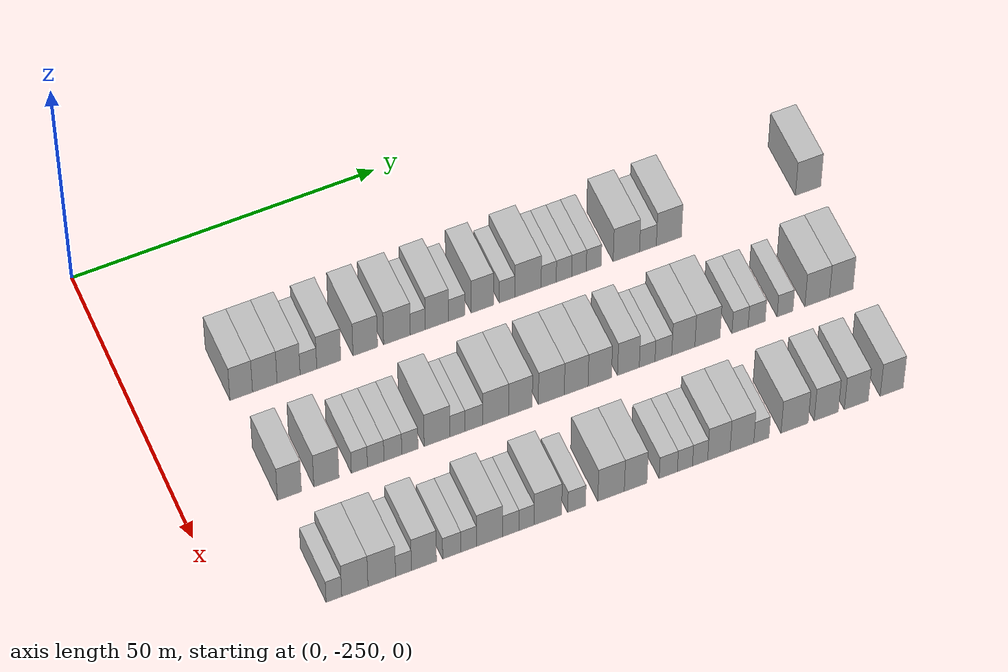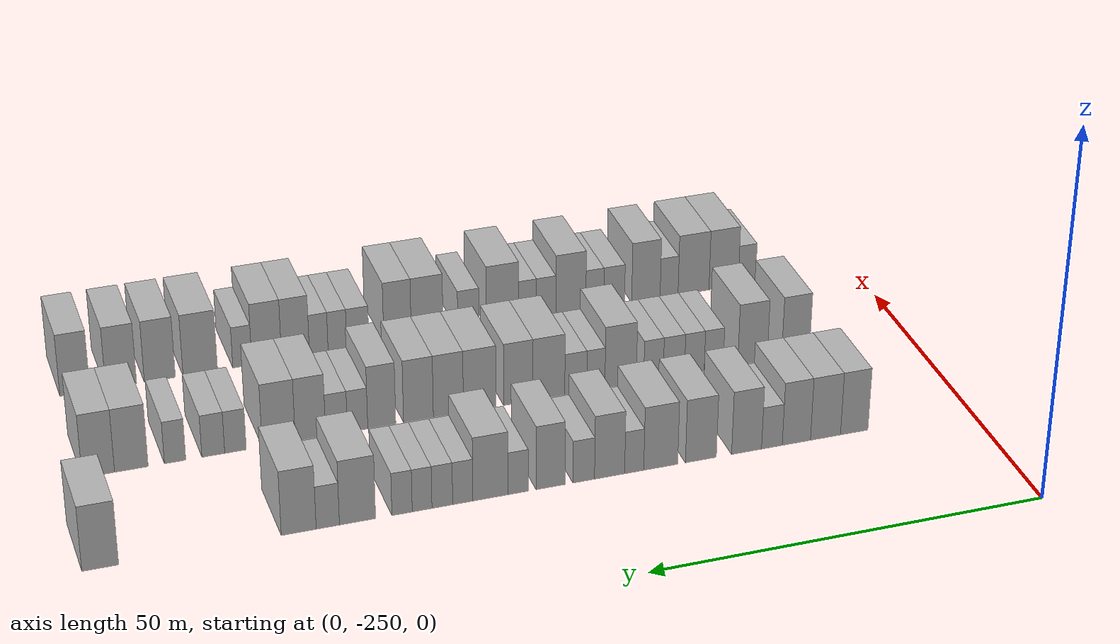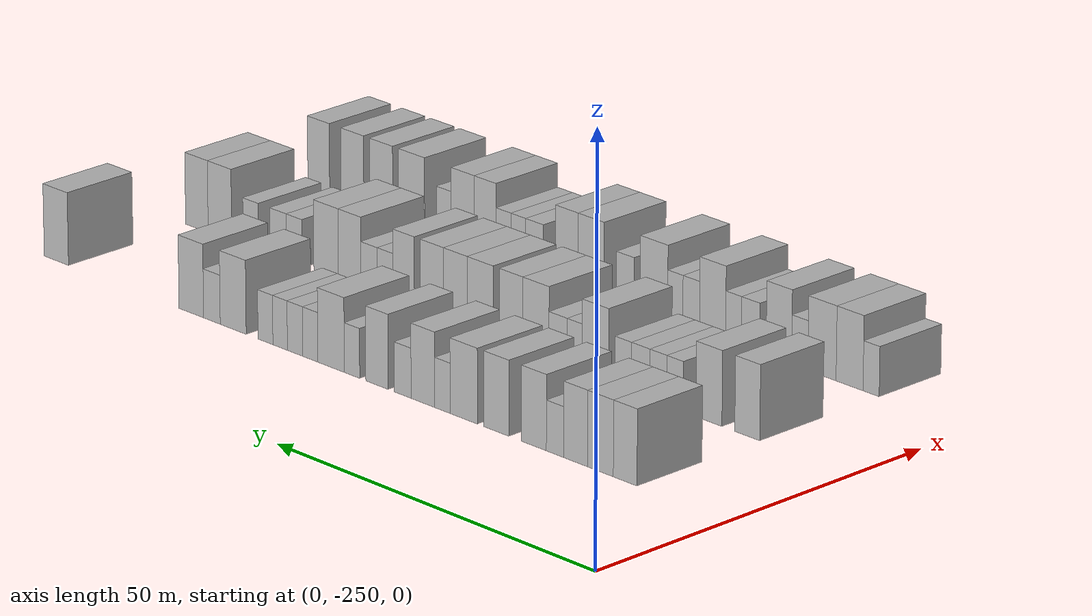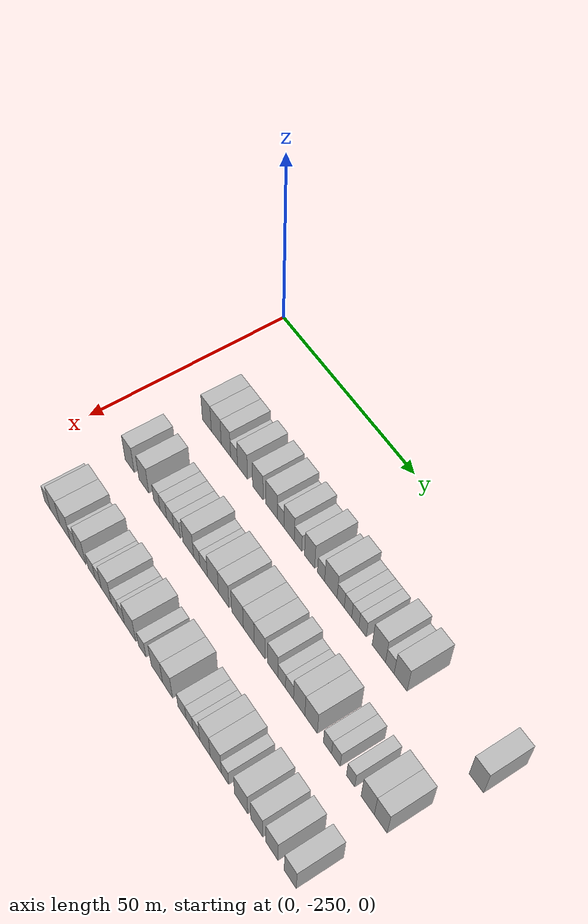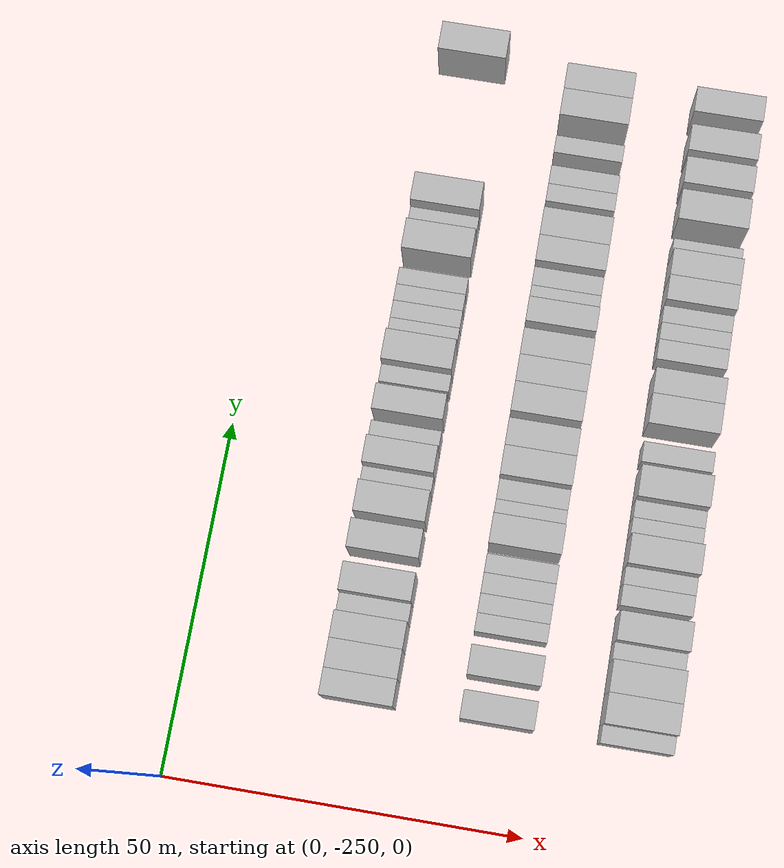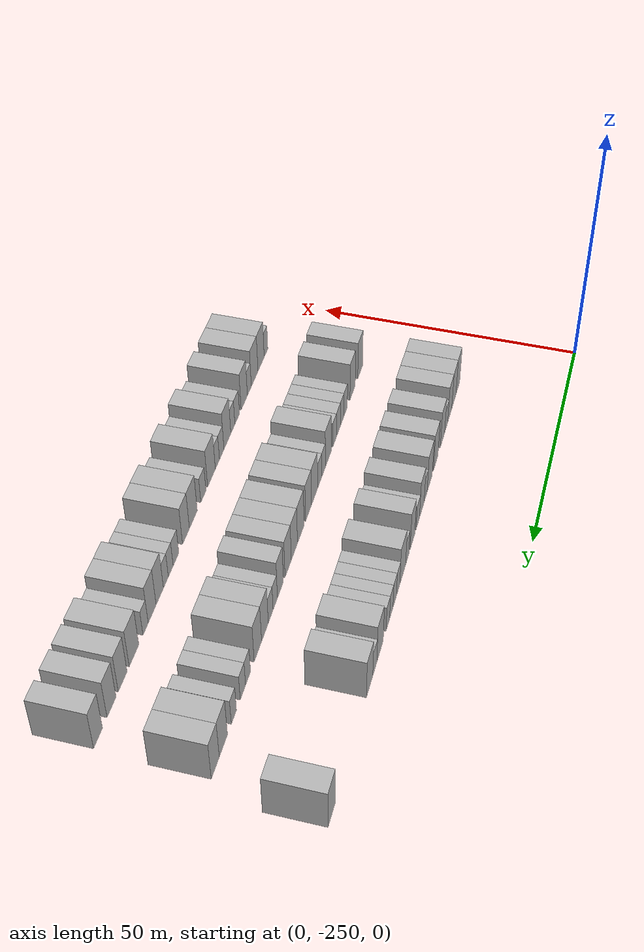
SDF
<sdf version="1.6">
 <world name="default">
  <model name="building_1">
   <static>1</static>
   <pose>25.0000 -234.1651 0 0.000000 0.000000 0.000000</pose>
   <link name="link">
    <pose>0 0 4.50 0 0 0</pose>
    <collision name="collision"><geometry><box><size>10.0000 3.6698 9.0000</size></box></geometry></collision>
    <visual name="visual">
     <cast_shadows>0</cast_shadows>
     <geometry><box><size>10.0000 3.6698 9.0000</size></box></geometry>
     <material>
      <script>
       <uri>model://HANNAS_wall/materials/scripts</uri>
       <uri>model://HANNAS_wall/materials/textures</uri>
       <name>vrc/HANNAS_wall</name>
      </script>
     </material>
    </visual>
   </link>
  </model>
  <model name="building_2">
   <static>1</static>
   <pose>25.0000 -230.3280 0 0.000000 0.000000 0.000000</pose>
   <link name="link">
    <pose>0 0 4.50 0 0 0</pose>
    <collision name="collision"><geometry><box><size>10.0000 4.0046 9.0000</size></box></geometry></collision>
    <visual name="visual">
     <cast_shadows>0</cast_shadows>
     <geometry><box><size>10.0000 4.0046 9.0000</size></box></geometry>
     <material>
      <script>
       <uri>model://HANNAS_wall/materials/scripts</uri>
       <uri>model://HANNAS_wall/materials/textures</uri>
       <name>vrc/HANNAS_wall</name>
      </script>
     </material>
    </visual>
   </link>
  </model>
  <model name="building_3">
   <static>1</static>
   <pose>25.0000 -226.4558 0 0.000000 0.000000 0.000000</pose>
   <link name="link">
    <pose>0 0 4.50 0 0 0</pose>
    <collision name="collision"><geometry><box><size>10.0000 3.7398 9.0000</size></box></geometry></collision>
    <visual name="visual">
     <cast_shadows>0</cast_shadows>
     <geometry><box><size>10.0000 3.7398 9.0000</size></box></geometry>
     <material>
      <script>
       <uri>model://HANNAS_wall/materials/scripts</uri>
       <uri>model://HANNAS_wall/materials/textures</uri>
       <name>vrc/HANNAS_wall</name>
      </script>
     </material>
    </visual>
   </link>
  </model>
  <model name="building_4">
   <static>1</static>
   <pose>25.0000 -223.2216 0 0.000000 0.000000 0.000000</pose>
   <link name="link">
    <pose>0 0 3.00 0 0 0</pose>
    <collision name="collision"><geometry><box><size>10.0000 2.7286 6.0000</size></box></geometry></collision>
    <visual name="visual">
     <cast_shadows>0</cast_shadows>
     <geometry><box><size>10.0000 2.7286 6.0000</size></box></geometry>
     <material>
      <script>
       <uri>model://HANNAS_wall/materials/scripts</uri>
       <uri>model://HANNAS_wall/materials/textures</uri>
       <name>vrc/HANNAS_wall</name>
      </script>
     </material>
    </visual>
   </link>
  </model>
  <model name="building_5">
   <static>1</static>
   <pose>25.0000 -219.8917 0 0.000000 0.000000 0.000000</pose>
   <link name="link">
    <pose>0 0 4.50 0 0 0</pose>
    <collision name="collision"><geometry><box><size>10.0000 3.9312 9.0000</size></box></geometry></collision>
    <visual name="visual">
     <cast_shadows>0</cast_shadows>
     <geometry><box><size>10.0000 3.9312 9.0000</size></box></geometry>
     <material>
      <script>
       <uri>model://HANNAS_wall/materials/scripts</uri>
       <uri>model://HANNAS_wall/materials/textures</uri>
       <name>vrc/HANNAS_wall</name>
      </script>
     </material>
    </visual>
   </link>
  </model>
  <model name="building_6">
   <static>1</static>
   <pose>25.0000 -213.9135 0 0.000000 0.000000 0.000000</pose>
   <link name="link">
    <pose>0 0 4.50 0 0 0</pose>
    <collision name="collision"><geometry><box><size>10.0000 4.0252 9.0000</size></box></geometry></collision>
    <visual name="visual">
     <cast_shadows>0</cast_shadows>
     <geometry><box><size>10.0000 4.0252 9.0000</size></box></geometry>
     <material>
      <script>
       <uri>model://HANNAS_wall/materials/scripts</uri>
       <uri>model://HANNAS_wall/materials/textures</uri>
       <name>vrc/HANNAS_wall</name>
      </script>
     </material>
    </visual>
   </link>
  </model>
  <model name="building_7">
   <static>1</static>
   <pose>25.0000 -208.7086 0 0.000000 0.000000 0.000000</pose>
   <link name="link">
    <pose>0 0 4.50 0 0 0</pose>
    <collision name="collision"><geometry><box><size>10.0000 4.3846 9.0000</size></box></geometry></collision>
    <visual name="visual">
     <cast_shadows>0</cast_shadows>
     <geometry><box><size>10.0000 4.3846 9.0000</size></box></geometry>
     <material>
      <script>
       <uri>model://HANNAS_wall/materials/scripts</uri>
       <uri>model://HANNAS_wall/materials/textures</uri>
       <name>vrc/HANNAS_wall</name>
      </script>
     </material>
    </visual>
   </link>
  </model>
  <model name="building_8">
   <static>1</static>
   <pose>25.0000 -205.2882 0 0.000000 0.000000 0.000000</pose>
   <link name="link">
    <pose>0 0 3.00 0 0 0</pose>
    <collision name="collision"><geometry><box><size>10.0000 2.4560 6.0000</size></box></geometry></collision>
    <visual name="visual">
     <cast_shadows>0</cast_shadows>
     <geometry><box><size>10.0000 2.4560 6.0000</size></box></geometry>
     <material>
      <script>
       <uri>model://HANNAS_wall/materials/scripts</uri>
       <uri>model://HANNAS_wall/materials/textures</uri>
       <name>vrc/HANNAS_wall</name>
      </script>
     </material>
    </visual>
   </link>
  </model>
  <model name="building_9">
   <static>1</static>
   <pose>25.0000 -202.1338 0 0.000000 0.000000 0.000000</pose>
   <link name="link">
    <pose>0 0 4.50 0 0 0</pose>
    <collision name="collision"><geometry><box><size>10.0000 3.8529 9.0000</size></box></geometry></collision>
    <visual name="visual">
     <cast_shadows>0</cast_shadows>
     <geometry><box><size>10.0000 3.8529 9.0000</size></box></geometry>
     <material>
      <script>
       <uri>model://HANNAS_wall/materials/scripts</uri>
       <uri>model://HANNAS_wall/materials/textures</uri>
       <name>vrc/HANNAS_wall</name>
      </script>
     </material>
    </visual>
   </link>
  </model>
  <model name="building_10">
   <static>1</static>
   <pose>25.0000 -198.8336 0 0.000000 0.000000 0.000000</pose>
   <link name="link">
    <pose>0 0 3.00 0 0 0</pose>
    <collision name="collision"><geometry><box><size>10.0000 2.7475 6.0000</size></box></geometry></collision>
    <visual name="visual">
     <cast_shadows>0</cast_shadows>
     <geometry><box><size>10.0000 2.7475 6.0000</size></box></geometry>
     <material>
      <script>
       <uri>model://HANNAS_wall/materials/scripts</uri>
       <uri>model://HANNAS_wall/materials/textures</uri>
       <name>vrc/HANNAS_wall</name>
      </script>
     </material>
    </visual>
   </link>
  </model>
  <model name="building_11">
   <static>1</static>
   <pose>25.0000 -194.6289 0 0.000000 0.000000 0.000000</pose>
   <link name="link">
    <pose>0 0 4.50 0 0 0</pose>
    <collision name="collision"><geometry><box><size>10.0000 3.6620 9.0000</size></box></geometry></collision>
    <visual name="visual">
     <cast_shadows>0</cast_shadows>
     <geometry><box><size>10.0000 3.6620 9.0000</size></box></geometry>
     <material>
      <script>
       <uri>model://HANNAS_wall/materials/scripts</uri>
       <uri>model://HANNAS_wall/materials/textures</uri>
       <name>vrc/HANNAS_wall</name>
      </script>
     </material>
    </visual>
   </link>
  </model>
  <model name="building_12">
   <static>1</static>
   <pose>25.0000 -190.5297 0 0.000000 0.000000 0.000000</pose>
   <link name="link">
    <pose>0 0 3.00 0 0 0</pose>
    <collision name="collision"><geometry><box><size>10.0000 2.5362 6.0000</size></box></geometry></collision>
    <visual name="visual">
     <cast_shadows>0</cast_shadows>
     <geometry><box><size>10.0000 2.5362 6.0000</size></box></geometry>
     <material>
      <script>
       <uri>model://HANNAS_wall/materials/scripts</uri>
       <uri>model://HANNAS_wall/materials/textures</uri>
       <name>vrc/HANNAS_wall</name>
      </script>
     </material>
    </visual>
   </link>
  </model>
  <model name="building_13">
   <static>1</static>
   <pose>25.0000 -187.0638 0 0.000000 0.000000 0.000000</pose>
   <link name="link">
    <pose>0 0 4.50 0 0 0</pose>
    <collision name="collision"><geometry><box><size>10.0000 4.3957 9.0000</size></box></geometry></collision>
    <visual name="visual">
     <cast_shadows>0</cast_shadows>
     <geometry><box><size>10.0000 4.3957 9.0000</size></box></geometry>
     <material>
      <script>
       <uri>model://HANNAS_wall/materials/scripts</uri>
       <uri>model://HANNAS_wall/materials/textures</uri>
       <name>vrc/HANNAS_wall</name>
      </script>
     </material>
    </visual>
   </link>
  </model>
  <model name="building_14">
   <static>1</static>
   <pose>25.0000 -183.6093 0 0.000000 0.000000 0.000000</pose>
   <link name="link">
    <pose>0 0 3.00 0 0 0</pose>
    <collision name="collision"><geometry><box><size>10.0000 2.5132 6.0000</size></box></geometry></collision>
    <visual name="visual">
     <cast_shadows>0</cast_shadows>
     <geometry><box><size>10.0000 2.5132 6.0000</size></box></geometry>
     <material>
      <script>
       <uri>model://HANNAS_wall/materials/scripts</uri>
       <uri>model://HANNAS_wall/materials/textures</uri>
       <name>vrc/HANNAS_wall</name>
      </script>
     </material>
    </visual>
   </link>
  </model>
  <model name="building_15">
   <static>1</static>
   <pose>25.0000 -181.0666 0 0.000000 0.000000 0.000000</pose>
   <link name="link">
    <pose>0 0 3.00 0 0 0</pose>
    <collision name="collision"><geometry><box><size>10.0000 2.5722 6.0000</size></box></geometry></collision>
    <visual name="visual">
     <cast_shadows>0</cast_shadows>
     <geometry><box><size>10.0000 2.5722 6.0000</size></box></geometry>
     <material>
      <script>
       <uri>model://HANNAS_wall/materials/scripts</uri>
       <uri>model://HANNAS_wall/materials/textures</uri>
       <name>vrc/HANNAS_wall</name>
      </script>
     </material>
    </visual>
   </link>
  </model>
  <model name="building_16">
   <static>1</static>
   <pose>25.0000 -178.5636 0 0.000000 0.000000 0.000000</pose>
   <link name="link">
    <pose>0 0 3.00 0 0 0</pose>
    <collision name="collision"><geometry><box><size>10.0000 2.4338 6.0000</size></box></geometry></collision>
    <visual name="visual">
     <cast_shadows>0</cast_shadows>
     <geometry><box><size>10.0000 2.4338 6.0000</size></box></geometry>
     <material>
      <script>
       <uri>model://HANNAS_wall/materials/scripts</uri>
       <uri>model://HANNAS_wall/materials/textures</uri>
       <name>vrc/HANNAS_wall</name>
      </script>
     </material>
    </visual>
   </link>
  </model>
  <model name="building_17">
   <static>1</static>
   <pose>25.0000 -176.0946 0 0.000000 0.000000 0.000000</pose>
   <link name="link">
    <pose>0 0 3.00 0 0 0</pose>
    <collision name="collision"><geometry><box><size>10.0000 2.5043 6.0000</size></box></geometry></collision>
    <visual name="visual">
     <cast_shadows>0</cast_shadows>
     <geometry><box><size>10.0000 2.5043 6.0000</size></box></geometry>
     <material>
      <script>
       <uri>model://HANNAS_wall/materials/scripts</uri>
       <uri>model://HANNAS_wall/materials/textures</uri>
       <name>vrc/HANNAS_wall</name>
      </script>
     </material>
    </visual>
   </link>
  </model>
  <model name="building_18">
   <static>1</static>
   <pose>25.0000 -170.6351 0 0.000000 0.000000 0.000000</pose>
   <link name="link">
    <pose>0 0 4.50 0 0 0</pose>
    <collision name="collision"><geometry><box><size>10.0000 4.4146 9.0000</size></box></geometry></collision>
    <visual name="visual">
     <cast_shadows>0</cast_shadows>
     <geometry><box><size>10.0000 4.4146 9.0000</size></box></geometry>
     <material>
      <script>
       <uri>model://HANNAS_wall/materials/scripts</uri>
       <uri>model://HANNAS_wall/materials/textures</uri>
       <name>vrc/HANNAS_wall</name>
      </script>
     </material>
    </visual>
   </link>
  </model>
  <model name="building_19">
   <static>1</static>
   <pose>25.0000 -167.0160 0 0.000000 0.000000 0.000000</pose>
   <link name="link">
    <pose>0 0 3.00 0 0 0</pose>
    <collision name="collision"><geometry><box><size>10.0000 2.8236 6.0000</size></box></geometry></collision>
    <visual name="visual">
     <cast_shadows>0</cast_shadows>
     <geometry><box><size>10.0000 2.8236 6.0000</size></box></geometry>
     <material>
      <script>
       <uri>model://HANNAS_wall/materials/scripts</uri>
       <uri>model://HANNAS_wall/materials/textures</uri>
       <name>vrc/HANNAS_wall</name>
      </script>
     </material>
    </visual>
   </link>
  </model>
  <model name="building_20">
   <static>1</static>
   <pose>25.0000 -163.4946 0 0.000000 0.000000 0.000000</pose>
   <link name="link">
    <pose>0 0 4.50 0 0 0</pose>
    <collision name="collision"><geometry><box><size>10.0000 4.2192 9.0000</size></box></geometry></collision>
    <visual name="visual">
     <cast_shadows>0</cast_shadows>
     <geometry><box><size>10.0000 4.2192 9.0000</size></box></geometry>
     <material>
      <script>
       <uri>model://HANNAS_wall/materials/scripts</uri>
       <uri>model://HANNAS_wall/materials/textures</uri>
       <name>vrc/HANNAS_wall</name>
      </script>
     </material>
    </visual>
   </link>
  </model>
  <model name="building_21">
   <static>1</static>
   <pose>25.0000 -139.9461 0 0.000000 0.000000 0.000000</pose>
   <link name="link">
    <pose>0 0 4.50 0 0 0</pose>
    <collision name="collision"><geometry><box><size>10.0000 4.2926 9.0000</size></box></geometry></collision>
    <visual name="visual">
     <cast_shadows>0</cast_shadows>
     <geometry><box><size>10.0000 4.2926 9.0000</size></box></geometry>
     <material>
      <script>
       <uri>model://HANNAS_wall/materials/scripts</uri>
       <uri>model://HANNAS_wall/materials/textures</uri>
       <name>vrc/HANNAS_wall</name>
      </script>
     </material>
    </visual>
   </link>
  </model>
  <model name="building_119">
   <static>1</static>
   <pose>44.0000 -234.0706 0 0.000000 0.000000 0.000000</pose>
   <link name="link">
    <pose>0 0 4.50 0 0 0</pose>
    <collision name="collision"><geometry><box><size>10.0000 3.8588 9.0000</size></box></geometry></collision>
    <visual name="visual">
     <cast_shadows>0</cast_shadows>
     <geometry><box><size>10.0000 3.8588 9.0000</size></box></geometry>
     <material>
      <script>
       <uri>model://HANNAS_wall/materials/scripts</uri>
       <uri>model://HANNAS_wall/materials/textures</uri>
       <name>vrc/HANNAS_wall</name>
      </script>
     </material>
    </visual>
   </link>
  </model>
  <model name="building_120">
   <static>1</static>
   <pose>44.0000 -228.1106 0 0.000000 0.000000 0.000000</pose>
   <link name="link">
    <pose>0 0 4.50 0 0 0</pose>
    <collision name="collision"><geometry><box><size>10.0000 4.0613 9.0000</size></box></geometry></collision>
    <visual name="visual">
     <cast_shadows>0</cast_shadows>
     <geometry><box><size>10.0000 4.0613 9.0000</size></box></geometry>
     <material>
      <script>
       <uri>model://HANNAS_wall/materials/scripts</uri>
       <uri>model://HANNAS_wall/materials/textures</uri>
       <name>vrc/HANNAS_wall</name>
      </script>
     </material>
    </visual>
   </link>
  </model>
  <model name="building_121">
   <static>1</static>
   <pose>44.0000 -222.7826 0 0.000000 0.000000 0.000000</pose>
   <link name="link">
    <pose>0 0 3.00 0 0 0</pose>
    <collision name="collision"><geometry><box><size>10.0000 2.5948 6.0000</size></box></geometry></collision>
    <visual name="visual">
     <cast_shadows>0</cast_shadows>
     <geometry><box><size>10.0000 2.5948 6.0000</size></box></geometry>
     <material>
      <script>
       <uri>model://HANNAS_wall/materials/scripts</uri>
       <uri>model://HANNAS_wall/materials/textures</uri>
       <name>vrc/HANNAS_wall</name>
      </script>
     </material>
    </visual>
   </link>
  </model>
  <model name="building_122">
   <static>1</static>
   <pose>44.0000 -220.1424 0 0.000000 0.000000 0.000000</pose>
   <link name="link">
    <pose>0 0 3.00 0 0 0</pose>
    <collision name="collision"><geometry><box><size>10.0000 2.6856 6.0000</size></box></geometry></collision>
    <visual name="visual">
     <cast_shadows>0</cast_shadows>
     <geometry><box><size>10.0000 2.6856 6.0000</size></box></geometry>
     <material>
      <script>
       <uri>model://HANNAS_wall/materials/scripts</uri>
       <uri>model://HANNAS_wall/materials/textures</uri>
       <name>vrc/HANNAS_wall</name>
      </script>
     </material>
    </visual>
   </link>
  </model>
  <model name="building_123">
   <static>1</static>
   <pose>44.0000 -217.3565 0 0.000000 0.000000 0.000000</pose>
   <link name="link">
    <pose>0 0 3.00 0 0 0</pose>
    <collision name="collision"><geometry><box><size>10.0000 2.8861 6.0000</size></box></geometry></collision>
    <visual name="visual">
     <cast_shadows>0</cast_shadows>
     <geometry><box><size>10.0000 2.8861 6.0000</size></box></geometry>
     <material>
      <script>
       <uri>model://HANNAS_wall/materials/scripts</uri>
       <uri>model://HANNAS_wall/materials/textures</uri>
       <name>vrc/HANNAS_wall</name>
      </script>
     </material>
    </visual>
   </link>
  </model>
  <model name="building_124">
   <static>1</static>
   <pose>44.0000 -214.5913 0 0.000000 0.000000 0.000000</pose>
   <link name="link">
    <pose>0 0 3.00 0 0 0</pose>
    <collision name="collision"><geometry><box><size>10.0000 2.6443 6.0000</size></box></geometry></collision>
    <visual name="visual">
     <cast_shadows>0</cast_shadows>
     <geometry><box><size>10.0000 2.6443 6.0000</size></box></geometry>
     <material>
      <script>
       <uri>model://HANNAS_wall/materials/scripts</uri>
       <uri>model://HANNAS_wall/materials/textures</uri>
       <name>vrc/HANNAS_wall</name>
      </script>
     </material>
    </visual>
   </link>
  </model>
  <model name="building_125">
   <static>1</static>
   <pose>44.0000 -210.1607 0 0.000000 0.000000 0.000000</pose>
   <link name="link">
    <pose>0 0 4.50 0 0 0</pose>
    <collision name="collision"><geometry><box><size>10.0000 4.2169 9.0000</size></box></geometry></collision>
    <visual name="visual">
     <cast_shadows>0</cast_shadows>
     <geometry><box><size>10.0000 4.2169 9.0000</size></box></geometry>
     <material>
      <script>
       <uri>model://HANNAS_wall/materials/scripts</uri>
       <uri>model://HANNAS_wall/materials/textures</uri>
       <name>vrc/HANNAS_wall</name>
      </script>
     </material>
    </visual>
   </link>
  </model>
  <model name="building_126">
   <static>1</static>
   <pose>44.0000 -206.8328 0 0.000000 0.000000 0.000000</pose>
   <link name="link">
    <pose>0 0 3.00 0 0 0</pose>
    <collision name="collision"><geometry><box><size>10.0000 2.4391 6.0000</size></box></geometry></collision>
    <visual name="visual">
     <cast_shadows>0</cast_shadows>
     <geometry><box><size>10.0000 2.4391 6.0000</size></box></geometry>
     <material>
      <script>
       <uri>model://HANNAS_wall/materials/scripts</uri>
       <uri>model://HANNAS_wall/materials/textures</uri>
       <name>vrc/HANNAS_wall</name>
      </script>
     </material>
    </visual>
   </link>
  </model>
  <model name="building_127">
   <static>1</static>
   <pose>44.0000 -204.1527 0 0.000000 0.000000 0.000000</pose>
   <link name="link">
    <pose>0 0 3.00 0 0 0</pose>
    <collision name="collision"><geometry><box><size>10.0000 2.9211 6.0000</size></box></geometry></collision>
    <visual name="visual">
     <cast_shadows>0</cast_shadows>
     <geometry><box><size>10.0000 2.9211 6.0000</size></box></geometry>
     <material>
      <script>
       <uri>model://HANNAS_wall/materials/scripts</uri>
       <uri>model://HANNAS_wall/materials/textures</uri>
       <name>vrc/HANNAS_wall</name>
      </script>
     </material>
    </visual>
   </link>
  </model>
  <model name="building_128">
   <static>1</static>
   <pose>44.0000 -200.5855 0 0.000000 0.000000 0.000000</pose>
   <link name="link">
    <pose>0 0 4.50 0 0 0</pose>
    <collision name="collision"><geometry><box><size>10.0000 4.2133 9.0000</size></box></geometry></collision>
    <visual name="visual">
     <cast_shadows>0</cast_shadows>
     <geometry><box><size>10.0000 4.2133 9.0000</size></box></geometry>
     <material>
      <script>
       <uri>model://HANNAS_wall/materials/scripts</uri>
       <uri>model://HANNAS_wall/materials/textures</uri>
       <name>vrc/HANNAS_wall</name>
      </script>
     </material>
    </visual>
   </link>
  </model>
  <model name="building_129">
   <static>1</static>
   <pose>44.0000 -196.5421 0 0.000000 0.000000 0.000000</pose>
   <link name="link">
    <pose>0 0 4.50 0 0 0</pose>
    <collision name="collision"><geometry><box><size>10.0000 3.8736 9.0000</size></box></geometry></collision>
    <visual name="visual">
     <cast_shadows>0</cast_shadows>
     <geometry><box><size>10.0000 3.8736 9.0000</size></box></geometry>
     <material>
      <script>
       <uri>model://HANNAS_wall/materials/scripts</uri>
       <uri>model://HANNAS_wall/materials/textures</uri>
       <name>vrc/HANNAS_wall</name>
      </script>
     </material>
    </visual>
   </link>
  </model>
  <model name="building_130">
   <static>1</static>
   <pose>44.0000 -191.4720 0 0.000000 0.000000 0.000000</pose>
   <link name="link">
    <pose>0 0 4.50 0 0 0</pose>
    <collision name="collision"><geometry><box><size>10.0000 4.2666 9.0000</size></box></geometry></collision>
    <visual name="visual">
     <cast_shadows>0</cast_shadows>
     <geometry><box><size>10.0000 4.2666 9.0000</size></box></geometry>
     <material>
      <script>
       <uri>model://HANNAS_wall/materials/scripts</uri>
       <uri>model://HANNAS_wall/materials/textures</uri>
       <name>vrc/HANNAS_wall</name>
      </script>
     </material>
    </visual>
   </link>
  </model>
  <model name="building_131">
   <static>1</static>
   <pose>44.0000 -187.3818 0 0.000000 0.000000 0.000000</pose>
   <link name="link">
    <pose>0 0 4.50 0 0 0</pose>
    <collision name="collision"><geometry><box><size>10.0000 3.9137 9.0000</size></box></geometry></collision>
    <visual name="visual">
     <cast_shadows>0</cast_shadows>
     <geometry><box><size>10.0000 3.9137 9.0000</size></box></geometry>
     <material>
      <script>
       <uri>model://HANNAS_wall/materials/scripts</uri>
       <uri>model://HANNAS_wall/materials/textures</uri>
       <name>vrc/HANNAS_wall</name>
      </script>
     </material>
    </visual>
   </link>
  </model>
  <model name="building_132">
   <static>1</static>
   <pose>44.0000 -183.4945 0 0.000000 0.000000 0.000000</pose>
   <link name="link">
    <pose>0 0 4.50 0 0 0</pose>
    <collision name="collision"><geometry><box><size>10.0000 3.8610 9.0000</size></box></geometry></collision>
    <visual name="visual">
     <cast_shadows>0</cast_shadows>
     <geometry><box><size>10.0000 3.8610 9.0000</size></box></geometry>
     <material>
      <script>
       <uri>model://HANNAS_wall/materials/scripts</uri>
       <uri>model://HANNAS_wall/materials/textures</uri>
       <name>vrc/HANNAS_wall</name>
      </script>
     </material>
    </visual>
   </link>
  </model>
  <model name="building_133">
   <static>1</static>
   <pose>44.0000 -178.7617 0 0.000000 0.000000 0.000000</pose>
   <link name="link">
    <pose>0 0 4.50 0 0 0</pose>
    <collision name="collision"><geometry><box><size>10.0000 3.6045 9.0000</size></box></geometry></collision>
    <visual name="visual">
     <cast_shadows>0</cast_shadows>
     <geometry><box><size>10.0000 3.6045 9.0000</size></box></geometry>
     <material>
      <script>
       <uri>model://HANNAS_wall/materials/scripts</uri>
       <uri>model://HANNAS_wall/materials/textures</uri>
       <name>vrc/HANNAS_wall</name>
      </script>
     </material>
    </visual>
   </link>
  </model>
  <model name="building_134">
   <static>1</static>
   <pose>44.0000 -175.6566 0 0.000000 0.000000 0.000000</pose>
   <link name="link">
    <pose>0 0 3.00 0 0 0</pose>
    <collision name="collision"><geometry><box><size>10.0000 2.6058 6.0000</size></box></geometry></collision>
    <visual name="visual">
     <cast_shadows>0</cast_shadows>
     <geometry><box><size>10.0000 2.6058 6.0000</size></box></geometry>
     <material>
      <script>
       <uri>model://HANNAS_wall/materials/scripts</uri>
       <uri>model://HANNAS_wall/materials/textures</uri>
       <name>vrc/HANNAS_wall</name>
      </script>
     </material>
    </visual>
   </link>
  </model>
  <model name="building_135">
   <static>1</static>
   <pose>44.0000 -172.9677 0 0.000000 0.000000 0.000000</pose>
   <link name="link">
    <pose>0 0 3.00 0 0 0</pose>
    <collision name="collision"><geometry><box><size>10.0000 2.7719 6.0000</size></box></geometry></collision>
    <visual name="visual">
     <cast_shadows>0</cast_shadows>
     <geometry><box><size>10.0000 2.7719 6.0000</size></box></geometry>
     <material>
      <script>
       <uri>model://HANNAS_wall/materials/scripts</uri>
       <uri>model://HANNAS_wall/materials/textures</uri>
       <name>vrc/HANNAS_wall</name>
      </script>
     </material>
    </visual>
   </link>
  </model>
  <model name="building_136">
   <static>1</static>
   <pose>44.0000 -169.6566 0 0.000000 0.000000 0.000000</pose>
   <link name="link">
    <pose>0 0 4.50 0 0 0</pose>
    <collision name="collision"><geometry><box><size>10.0000 3.8503 9.0000</size></box></geometry></collision>
    <visual name="visual">
     <cast_shadows>0</cast_shadows>
     <geometry><box><size>10.0000 3.8503 9.0000</size></box></geometry>
     <material>
      <script>
       <uri>model://HANNAS_wall/materials/scripts</uri>
       <uri>model://HANNAS_wall/materials/textures</uri>
       <name>vrc/HANNAS_wall</name>
      </script>
     </material>
    </visual>
   </link>
  </model>
  <model name="building_137">
   <static>1</static>
   <pose>44.0000 -165.6408 0 0.000000 0.000000 0.000000</pose>
   <link name="link">
    <pose>0 0 4.50 0 0 0</pose>
    <collision name="collision"><geometry><box><size>10.0000 4.1812 9.0000</size></box></geometry></collision>
    <visual name="visual">
     <cast_shadows>0</cast_shadows>
     <geometry><box><size>10.0000 4.1812 9.0000</size></box></geometry>
     <material>
      <script>
       <uri>model://HANNAS_wall/materials/scripts</uri>
       <uri>model://HANNAS_wall/materials/textures</uri>
       <name>vrc/HANNAS_wall</name>
      </script>
     </material>
    </visual>
   </link>
  </model>
  <model name="building_138">
   <static>1</static>
   <pose>44.0000 -160.1993 0 0.000000 0.000000 0.000000</pose>
   <link name="link">
    <pose>0 0 3.00 0 0 0</pose>
    <collision name="collision"><geometry><box><size>10.0000 2.7019 6.0000</size></box></geometry></collision>
    <visual name="visual">
     <cast_shadows>0</cast_shadows>
     <geometry><box><size>10.0000 2.7019 6.0000</size></box></geometry>
     <material>
      <script>
       <uri>model://HANNAS_wall/materials/scripts</uri>
       <uri>model://HANNAS_wall/materials/textures</uri>
       <name>vrc/HANNAS_wall</name>
      </script>
     </material>
    </visual>
   </link>
  </model>
  <model name="building_139">
   <static>1</static>
   <pose>44.0000 -157.4238 0 0.000000 0.000000 0.000000</pose>
   <link name="link">
    <pose>0 0 3.00 0 0 0</pose>
    <collision name="collision"><geometry><box><size>10.0000 2.8490 6.0000</size></box></geometry></collision>
    <visual name="visual">
     <cast_shadows>0</cast_shadows>
     <geometry><box><size>10.0000 2.8490 6.0000</size></box></geometry>
     <material>
      <script>
       <uri>model://HANNAS_wall/materials/scripts</uri>
       <uri>model://HANNAS_wall/materials/textures</uri>
       <name>vrc/HANNAS_wall</name>
      </script>
     </material>
    </visual>
   </link>
  </model>
  <model name="building_140">
   <static>1</static>
   <pose>44.0000 -152.6737 0 0.000000 0.000000 0.000000</pose>
   <link name="link">
    <pose>0 0 3.00 0 0 0</pose>
    <collision name="collision"><geometry><box><size>10.0000 2.6513 6.0000</size></box></geometry></collision>
    <visual name="visual">
     <cast_shadows>0</cast_shadows>
     <geometry><box><size>10.0000 2.6513 6.0000</size></box></geometry>
     <material>
      <script>
       <uri>model://HANNAS_wall/materials/scripts</uri>
       <uri>model://HANNAS_wall/materials/textures</uri>
       <name>vrc/HANNAS_wall</name>
      </script>
     </material>
    </visual>
   </link>
  </model>
  <model name="building_141">
   <static>1</static>
   <pose>44.0000 -147.2824 0 0.000000 0.000000 0.000000</pose>
   <link name="link">
    <pose>0 0 4.50 0 0 0</pose>
    <collision name="collision"><geometry><box><size>10.0000 4.1312 9.0000</size></box></geometry></collision>
    <visual name="visual">
     <cast_shadows>0</cast_shadows>
     <geometry><box><size>10.0000 4.1312 9.0000</size></box></geometry>
     <material>
      <script>
       <uri>model://HANNAS_wall/materials/scripts</uri>
       <uri>model://HANNAS_wall/materials/textures</uri>
       <name>vrc/HANNAS_wall</name>
      </script>
     </material>
    </visual>
   </link>
  </model>
  <model name="building_142">
   <static>1</static>
   <pose>44.0000 -143.2360 0 0.000000 0.000000 0.000000</pose>
   <link name="link">
    <pose>0 0 4.50 0 0 0</pose>
    <collision name="collision"><geometry><box><size>10.0000 3.9616 9.0000</size></box></geometry></collision>
    <visual name="visual">
     <cast_shadows>0</cast_shadows>
     <geometry><box><size>10.0000 3.9616 9.0000</size></box></geometry>
     <material>
      <script>
       <uri>model://HANNAS_wall/materials/scripts</uri>
       <uri>model://HANNAS_wall/materials/textures</uri>
       <name>vrc/HANNAS_wall</name>
      </script>
     </material>
    </visual>
   </link>
  </model>
  <model name="building_225">
   <static>1</static>
   <pose>63.0000 -234.7519 0 0.000000 0.000000 0.000000</pose>
   <link name="link">
    <pose>0 0 3.00 0 0 0</pose>
    <collision name="collision"><geometry><box><size>10.0000 2.4961 6.0000</size></box></geometry></collision>
    <visual name="visual">
     <cast_shadows>0</cast_shadows>
     <geometry><box><size>10.0000 2.4961 6.0000</size></box></geometry>
     <material>
      <script>
       <uri>model://HANNAS_wall/materials/scripts</uri>
       <uri>model://HANNAS_wall/materials/textures</uri>
       <name>vrc/HANNAS_wall</name>
      </script>
     </material>
    </visual>
   </link>
  </model>
  <model name="building_226">
   <static>1</static>
   <pose>63.0000 -231.4087 0 0.000000 0.000000 0.000000</pose>
   <link name="link">
    <pose>0 0 4.50 0 0 0</pose>
    <collision name="collision"><geometry><box><size>10.0000 4.1903 9.0000</size></box></geometry></collision>
    <visual name="visual">
     <cast_shadows>0</cast_shadows>
     <geometry><box><size>10.0000 4.1903 9.0000</size></box></geometry>
     <material>
      <script>
       <uri>model://HANNAS_wall/materials/scripts</uri>
       <uri>model://HANNAS_wall/materials/textures</uri>
       <name>vrc/HANNAS_wall</name>
      </script>
     </material>
    </visual>
   </link>
  </model>
  <model name="building_227">
   <static>1</static>
   <pose>63.0000 -227.1056 0 0.000000 0.000000 0.000000</pose>
   <link name="link">
    <pose>0 0 4.50 0 0 0</pose>
    <collision name="collision"><geometry><box><size>10.0000 4.4161 9.0000</size></box></geometry></collision>
    <visual name="visual">
     <cast_shadows>0</cast_shadows>
     <geometry><box><size>10.0000 4.4161 9.0000</size></box></geometry>
     <material>
      <script>
       <uri>model://HANNAS_wall/materials/scripts</uri>
       <uri>model://HANNAS_wall/materials/textures</uri>
       <name>vrc/HANNAS_wall</name>
      </script>
     </material>
    </visual>
   </link>
  </model>
  <model name="building_228">
   <static>1</static>
   <pose>63.0000 -223.6253 0 0.000000 0.000000 0.000000</pose>
   <link name="link">
    <pose>0 0 3.00 0 0 0</pose>
    <collision name="collision"><geometry><box><size>10.0000 2.5444 6.0000</size></box></geometry></collision>
    <visual name="visual">
     <cast_shadows>0</cast_shadows>
     <geometry><box><size>10.0000 2.5444 6.0000</size></box></geometry>
     <material>
      <script>
       <uri>model://HANNAS_wall/materials/scripts</uri>
       <uri>model://HANNAS_wall/materials/textures</uri>
       <name>vrc/HANNAS_wall</name>
      </script>
     </material>
    </visual>
   </link>
  </model>
  <model name="building_229">
   <static>1</static>
   <pose>63.0000 -220.3415 0 0.000000 0.000000 0.000000</pose>
   <link name="link">
    <pose>0 0 4.50 0 0 0</pose>
    <collision name="collision"><geometry><box><size>10.0000 4.0232 9.0000</size></box></geometry></collision>
    <visual name="visual">
     <cast_shadows>0</cast_shadows>
     <geometry><box><size>10.0000 4.0232 9.0000</size></box></geometry>
     <material>
      <script>
       <uri>model://HANNAS_wall/materials/scripts</uri>
       <uri>model://HANNAS_wall/materials/textures</uri>
       <name>vrc/HANNAS_wall</name>
      </script>
     </material>
    </visual>
   </link>
  </model>
  <model name="building_230">
   <static>1</static>
   <pose>63.0000 -215.8638 0 0.000000 0.000000 0.000000</pose>
   <link name="link">
    <pose>0 0 3.00 0 0 0</pose>
    <collision name="collision"><geometry><box><size>10.0000 2.9324 6.0000</size></box></geometry></collision>
    <visual name="visual">
     <cast_shadows>0</cast_shadows>
     <geometry><box><size>10.0000 2.9324 6.0000</size></box></geometry>
     <material>
      <script>
       <uri>model://HANNAS_wall/materials/scripts</uri>
       <uri>model://HANNAS_wall/materials/textures</uri>
       <name>vrc/HANNAS_wall</name>
      </script>
     </material>
    </visual>
   </link>
  </model>
  <model name="building_231">
   <static>1</static>
   <pose>63.0000 -213.1443 0 0.000000 0.000000 0.000000</pose>
   <link name="link">
    <pose>0 0 3.00 0 0 0</pose>
    <collision name="collision"><geometry><box><size>10.0000 2.5065 6.0000</size></box></geometry></collision>
    <visual name="visual">
     <cast_shadows>0</cast_shadows>
     <geometry><box><size>10.0000 2.5065 6.0000</size></box></geometry>
     <material>
      <script>
       <uri>model://HANNAS_wall/materials/scripts</uri>
       <uri>model://HANNAS_wall/materials/textures</uri>
       <name>vrc/HANNAS_wall</name>
      </script>
     </material>
    </visual>
   </link>
  </model>
  <model name="building_232">
   <static>1</static>
   <pose>63.0000 -209.8013 0 0.000000 0.000000 0.000000</pose>
   <link name="link">
    <pose>0 0 4.50 0 0 0</pose>
    <collision name="collision"><geometry><box><size>10.0000 4.1795 9.0000</size></box></geometry></collision>
    <visual name="visual">
     <cast_shadows>0</cast_shadows>
     <geometry><box><size>10.0000 4.1795 9.0000</size></box></geometry>
     <material>
      <script>
       <uri>model://HANNAS_wall/materials/scripts</uri>
       <uri>model://HANNAS_wall/materials/textures</uri>
       <name>vrc/HANNAS_wall</name>
      </script>
     </material>
    </visual>
   </link>
  </model>
  <model name="building_233">
   <static>1</static>
   <pose>63.0000 -206.3670 0 0.000000 0.000000 0.000000</pose>
   <link name="link">
    <pose>0 0 3.00 0 0 0</pose>
    <collision name="collision"><geometry><box><size>10.0000 2.6891 6.0000</size></box></geometry></collision>
    <visual name="visual">
     <cast_shadows>0</cast_shadows>
     <geometry><box><size>10.0000 2.6891 6.0000</size></box></geometry>
     <material>
      <script>
       <uri>model://HANNAS_wall/materials/scripts</uri>
       <uri>model://HANNAS_wall/materials/textures</uri>
       <name>vrc/HANNAS_wall</name>
      </script>
     </material>
    </visual>
   </link>
  </model>
  <model name="building_234">
   <static>1</static>
   <pose>63.0000 -203.7992 0 0.000000 0.000000 0.000000</pose>
   <link name="link">
    <pose>0 0 3.00 0 0 0</pose>
    <collision name="collision"><geometry><box><size>10.0000 2.4463 6.0000</size></box></geometry></collision>
    <visual name="visual">
     <cast_shadows>0</cast_shadows>
     <geometry><box><size>10.0000 2.4463 6.0000</size></box></geometry>
     <material>
      <script>
       <uri>model://HANNAS_wall/materials/scripts</uri>
       <uri>model://HANNAS_wall/materials/textures</uri>
       <name>vrc/HANNAS_wall</name>
      </script>
     </material>
    </visual>
   </link>
  </model>
  <model name="building_235">
   <static>1</static>
   <pose>63.0000 -200.3434 0 0.000000 0.000000 0.000000</pose>
   <link name="link">
    <pose>0 0 4.50 0 0 0</pose>
    <collision name="collision"><geometry><box><size>10.0000 4.4655 9.0000</size></box></geometry></collision>
    <visual name="visual">
     <cast_shadows>0</cast_shadows>
     <geometry><box><size>10.0000 4.4655 9.0000</size></box></geometry>
     <material>
      <script>
       <uri>model://HANNAS_wall/materials/scripts</uri>
       <uri>model://HANNAS_wall/materials/textures</uri>
       <name>vrc/HANNAS_wall</name>
      </script>
     </material>
    </visual>
   </link>
  </model>
  <model name="building_236">
   <static>1</static>
   <pose>63.0000 -195.6634 0 0.000000 0.000000 0.000000</pose>
   <link name="link">
    <pose>0 0 3.00 0 0 0</pose>
    <collision name="collision"><geometry><box><size>10.0000 2.8945 6.0000</size></box></geometry></collision>
    <visual name="visual">
     <cast_shadows>0</cast_shadows>
     <geometry><box><size>10.0000 2.8945 6.0000</size></box></geometry>
     <material>
      <script>
       <uri>model://HANNAS_wall/materials/scripts</uri>
       <uri>model://HANNAS_wall/materials/textures</uri>
       <name>vrc/HANNAS_wall</name>
      </script>
     </material>
    </visual>
   </link>
  </model>
  <model name="building_237">
   <static>1</static>
   <pose>63.0000 -190.0586 0 0.000000 0.000000 0.000000</pose>
   <link name="link">
    <pose>0 0 4.50 0 0 0</pose>
    <collision name="collision"><geometry><box><size>10.0000 4.3150 9.0000</size></box></geometry></collision>
    <visual name="visual">
     <cast_shadows>0</cast_shadows>
     <geometry><box><size>10.0000 4.3150 9.0000</size></box></geometry>
     <material>
      <script>
       <uri>model://HANNAS_wall/materials/scripts</uri>
       <uri>model://HANNAS_wall/materials/textures</uri>
       <name>vrc/HANNAS_wall</name>
      </script>
     </material>
    </visual>
   </link>
  </model>
  <model name="building_238">
   <static>1</static>
   <pose>63.0000 -186.0487 0 0.000000 0.000000 0.000000</pose>
   <link name="link">
    <pose>0 0 4.50 0 0 0</pose>
    <collision name="collision"><geometry><box><size>10.0000 3.7048 9.0000</size></box></geometry></collision>
    <visual name="visual">
     <cast_shadows>0</cast_shadows>
     <geometry><box><size>10.0000 3.7048 9.0000</size></box></geometry>
     <material>
      <script>
       <uri>model://HANNAS_wall/materials/scripts</uri>
       <uri>model://HANNAS_wall/materials/textures</uri>
       <name>vrc/HANNAS_wall</name>
      </script>
     </material>
    </visual>
   </link>
  </model>
  <model name="building_239">
   <static>1</static>
   <pose>63.0000 -180.7111 0 0.000000 0.000000 0.000000</pose>
   <link name="link">
    <pose>0 0 3.00 0 0 0</pose>
    <collision name="collision"><geometry><box><size>10.0000 2.9703 6.0000</size></box></geometry></collision>
    <visual name="visual">
     <cast_shadows>0</cast_shadows>
     <geometry><box><size>10.0000 2.9703 6.0000</size></box></geometry>
     <material>
      <script>
       <uri>model://HANNAS_wall/materials/scripts</uri>
       <uri>model://HANNAS_wall/materials/textures</uri>
       <name>vrc/HANNAS_wall</name>
      </script>
     </material>
    </visual>
   </link>
  </model>
  <model name="building_240">
   <static>1</static>
   <pose>63.0000 -177.9801 0 0.000000 0.000000 0.000000</pose>
   <link name="link">
    <pose>0 0 3.00 0 0 0</pose>
    <collision name="collision"><geometry><box><size>10.0000 2.4917 6.0000</size></box></geometry></collision>
    <visual name="visual">
     <cast_shadows>0</cast_shadows>
     <geometry><box><size>10.0000 2.4917 6.0000</size></box></geometry>
     <material>
      <script>
       <uri>model://HANNAS_wall/materials/scripts</uri>
       <uri>model://HANNAS_wall/materials/textures</uri>
       <name>vrc/HANNAS_wall</name>
      </script>
     </material>
    </visual>
   </link>
  </model>
  <model name="building_241">
   <static>1</static>
   <pose>63.0000 -175.4914 0 0.000000 0.000000 0.000000</pose>
   <link name="link">
    <pose>0 0 3.00 0 0 0</pose>
    <collision name="collision"><geometry><box><size>10.0000 2.4857 6.0000</size></box></geometry></collision>
    <visual name="visual">
     <cast_shadows>0</cast_shadows>
     <geometry><box><size>10.0000 2.4857 6.0000</size></box></geometry>
     <material>
      <script>
       <uri>model://HANNAS_wall/materials/scripts</uri>
       <uri>model://HANNAS_wall/materials/textures</uri>
       <name>vrc/HANNAS_wall</name>
      </script>
     </material>
    </visual>
   </link>
  </model>
  <model name="building_242">
   <static>1</static>
   <pose>63.0000 -172.4048 0 0.000000 0.000000 0.000000</pose>
   <link name="link">
    <pose>0 0 4.50 0 0 0</pose>
    <collision name="collision"><geometry><box><size>10.0000 3.6875 9.0000</size></box></geometry></collision>
    <visual name="visual">
     <cast_shadows>0</cast_shadows>
     <geometry><box><size>10.0000 3.6875 9.0000</size></box></geometry>
     <material>
      <script>
       <uri>model://HANNAS_wall/materials/scripts</uri>
       <uri>model://HANNAS_wall/materials/textures</uri>
       <name>vrc/HANNAS_wall</name>
      </script>
     </material>
    </visual>
   </link>
  </model>
  <model name="building_243">
   <static>1</static>
   <pose>63.0000 -168.6053 0 0.000000 0.000000 0.000000</pose>
   <link name="link">
    <pose>0 0 4.50 0 0 0</pose>
    <collision name="collision"><geometry><box><size>10.0000 3.9114 9.0000</size></box></geometry></collision>
    <visual name="visual">
     <cast_shadows>0</cast_shadows>
     <geometry><box><size>10.0000 3.9114 9.0000</size></box></geometry>
     <material>
      <script>
       <uri>model://HANNAS_wall/materials/scripts</uri>
       <uri>model://HANNAS_wall/materials/textures</uri>
       <name>vrc/HANNAS_wall</name>
      </script>
     </material>
    </visual>
   </link>
  </model>
  <model name="building_244">
   <static>1</static>
   <pose>63.0000 -165.3935 0 0.000000 0.000000 0.000000</pose>
   <link name="link">
    <pose>0 0 3.00 0 0 0</pose>
    <collision name="collision"><geometry><box><size>10.0000 2.5121 6.0000</size></box></geometry></collision>
    <visual name="visual">
     <cast_shadows>0</cast_shadows>
     <geometry><box><size>10.0000 2.5121 6.0000</size></box></geometry>
     <material>
      <script>
       <uri>model://HANNAS_wall/materials/scripts</uri>
       <uri>model://HANNAS_wall/materials/textures</uri>
       <name>vrc/HANNAS_wall</name>
      </script>
     </material>
    </visual>
   </link>
  </model>
  <model name="building_245">
   <static>1</static>
   <pose>63.0000 -159.8936 0 0.000000 0.000000 0.000000</pose>
   <link name="link">
    <pose>0 0 4.50 0 0 0</pose>
    <collision name="collision"><geometry><box><size>10.0000 4.4876 9.0000</size></box></geometry></collision>
    <visual name="visual">
     <cast_shadows>0</cast_shadows>
     <geometry><box><size>10.0000 4.4876 9.0000</size></box></geometry>
     <material>
      <script>
       <uri>model://HANNAS_wall/materials/scripts</uri>
       <uri>model://HANNAS_wall/materials/textures</uri>
       <name>vrc/HANNAS_wall</name>
      </script>
     </material>
    </visual>
   </link>
  </model>
  <model name="building_246">
   <static>1</static>
   <pose>63.0000 -154.6482 0 0.000000 0.000000 0.000000</pose>
   <link name="link">
    <pose>0 0 4.50 0 0 0</pose>
    <collision name="collision"><geometry><box><size>10.0000 4.0034 9.0000</size></box></geometry></collision>
    <visual name="visual">
     <cast_shadows>0</cast_shadows>
     <geometry><box><size>10.0000 4.0034 9.0000</size></box></geometry>
     <material>
      <script>
       <uri>model://HANNAS_wall/materials/scripts</uri>
       <uri>model://HANNAS_wall/materials/textures</uri>
       <name>vrc/HANNAS_wall</name>
      </script>
     </material>
    </visual>
   </link>
  </model>
  <model name="building_247">
   <static>1</static>
   <pose>63.0000 -149.6608 0 0.000000 0.000000 0.000000</pose>
   <link name="link">
    <pose>0 0 4.50 0 0 0</pose>
    <collision name="collision"><geometry><box><size>10.0000 3.9715 9.0000</size></box></geometry></collision>
    <visual name="visual">
     <cast_shadows>0</cast_shadows>
     <geometry><box><size>10.0000 3.9715 9.0000</size></box></geometry>
     <material>
      <script>
       <uri>model://HANNAS_wall/materials/scripts</uri>
       <uri>model://HANNAS_wall/materials/textures</uri>
       <name>vrc/HANNAS_wall</name>
      </script>
     </material>
    </visual>
   </link>
  </model>
  <model name="building_248">
   <static>1</static>
   <pose>63.0000 -143.7603 0 0.000000 0.000000 0.000000</pose>
   <link name="link">
    <pose>0 0 4.50 0 0 0</pose>
    <collision name="collision"><geometry><box><size>10.0000 3.8295 9.0000</size></box></geometry></collision>
    <visual name="visual">
     <cast_shadows>0</cast_shadows>
     <geometry><box><size>10.0000 3.8295 9.0000</size></box></geometry>
     <material>
      <script>
       <uri>model://HANNAS_wall/materials/scripts</uri>
       <uri>model://HANNAS_wall/materials/textures</uri>
       <name>vrc/HANNAS_wall</name>
      </script>
     </material>
    </visual>
   </link>
  </model>
 </world>
</sdf>
